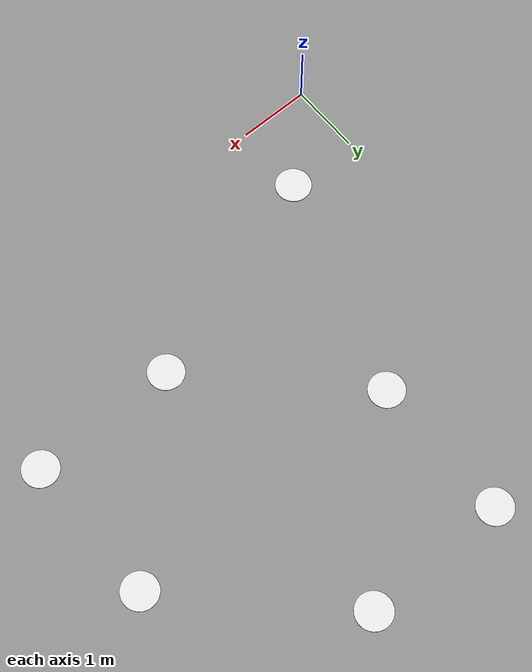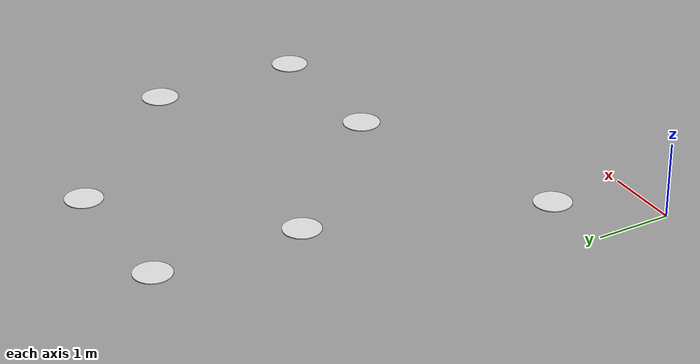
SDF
<sdf version="1.5">
 <world name="default">
  <include><uri>model://sun</uri></include>
  <include><uri>model://pothole</uri><name>pothole_1</name><pose>1 1 0  0 0 0</pose></include>
  <include><uri>model://pothole</uri><name>pothole_2</name><pose>2 4 0  0 0 0</pose></include>
  <include><uri>model://pothole</uri><name>pothole_3</name><pose>4 2 0  0 0 0</pose></include>
  <include><uri>model://pothole</uri><name>pothole_4</name><pose>6 2 0  0 0 0</pose></include>
  <include><uri>model://pothole</uri><name>pothole_5</name><pose>6 4 0  0 0 0</pose></include>
  <include><uri>model://pothole</uri><name>pothole_6</name><pose>2 6 0  0 0 0</pose></include>
  <include><uri>model://pothole</uri><name>pothole_7</name><pose>4 6 0  0 0 0</pose></include>
 </world>
</sdf>

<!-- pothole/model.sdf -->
<sdf version='1.7'>
	<model name='pothole'>
		<link name='link'>
			<inertial>
				<mass>1</mass>
				<inertia>
					<ixx>0</ixx>
					<ixy>0</ixy>
					<ixz>0</ixz>
					<iyy>0</iyy>
					<iyz>0</iyz>
					<izz>0</izz>
				</inertia>
				<pose>0 0 0  0 0 0</pose>
			</inertial>
			<self_collide>0</self_collide>
			<enable_wind>0</enable_wind>
			<kinematic>0</kinematic>
			<pose>0 0 0 0 0 0</pose>
			<gravity>1</gravity>
			<visual name='visual'>
				<geometry>
					<cylinder>
						<radius>0.25</radius>
						<length>0.01</length>
					</cylinder>
				</geometry>
				<material>
					<script>
						<name>Gazebo/WhiteGlow</name>
						<uri>file://media/materials/scripts/gazebo.material</uri>
					</script>
					<shader type='pixel'>
						<normal_map>__default__</normal_map>
					</shader>
				</material>
				<pose>0 0 0 0 0 0</pose>
				<transparency>0</transparency>
				<cast_shadows>1</cast_shadows>
			</visual>
		</link>
		<static>1</static>
		<allow_auto_disable>1</allow_auto_disable>
	</model>
</sdf>
